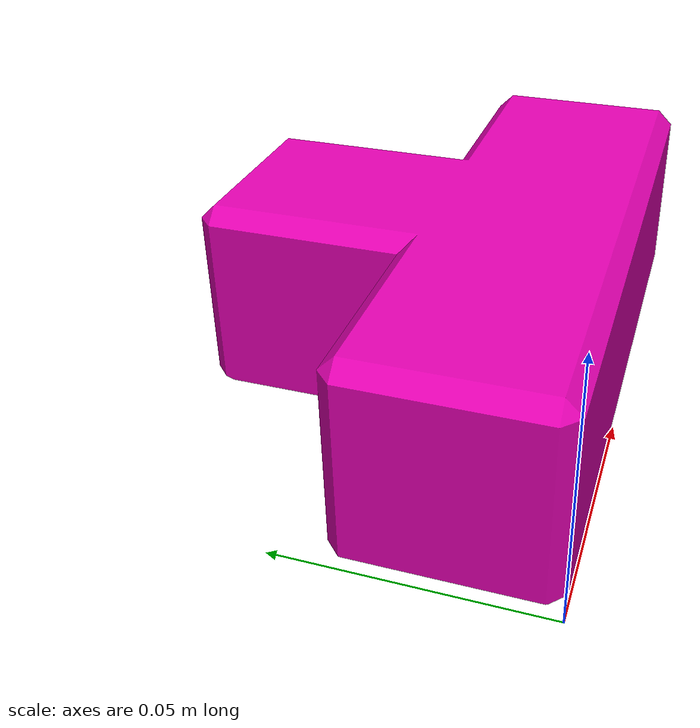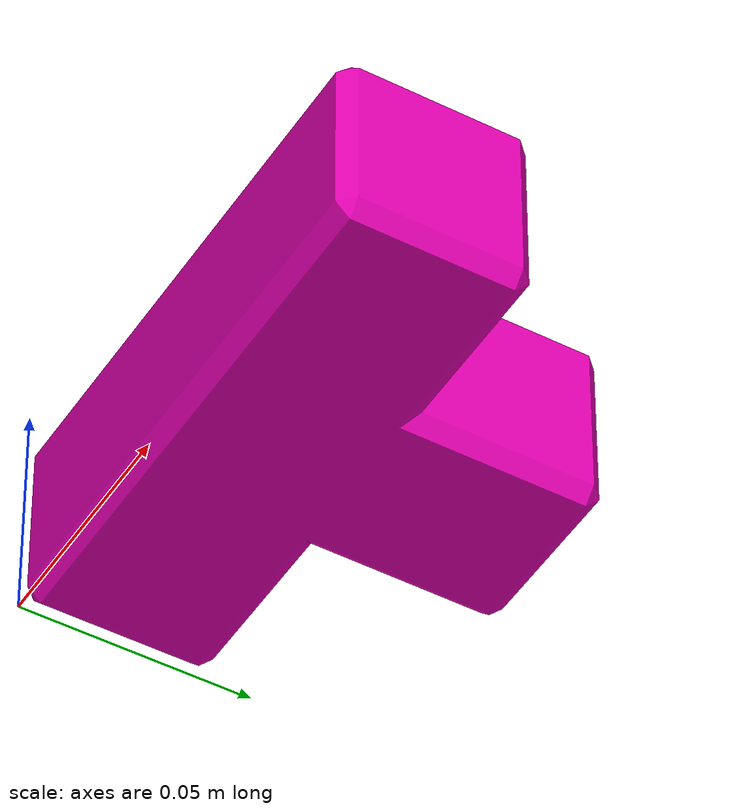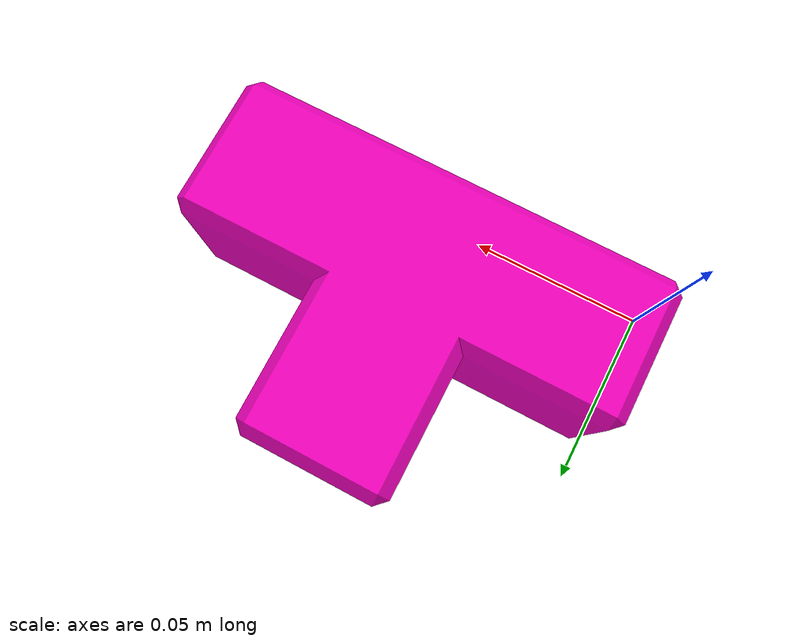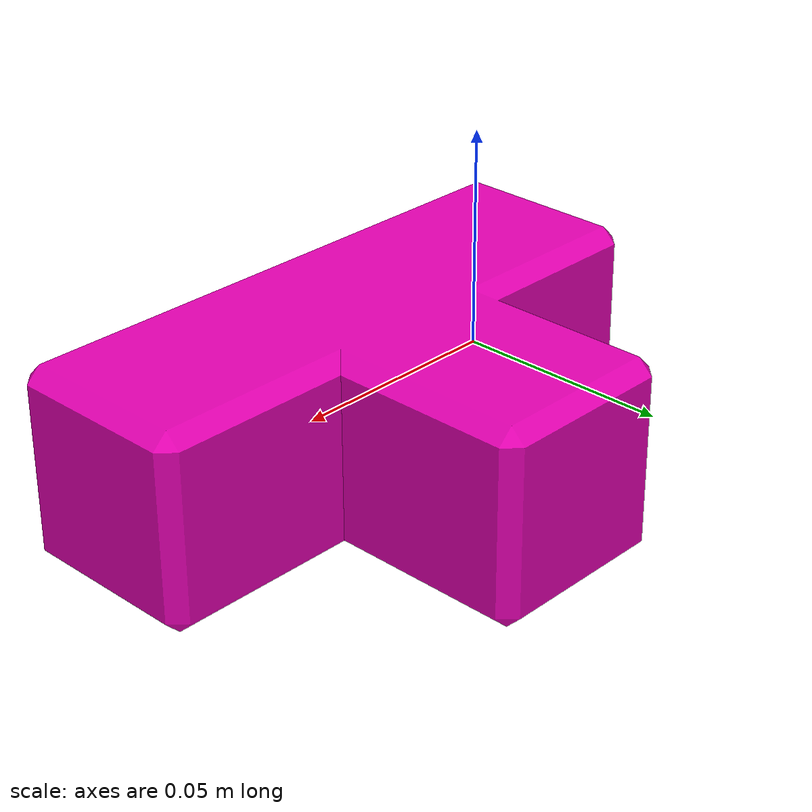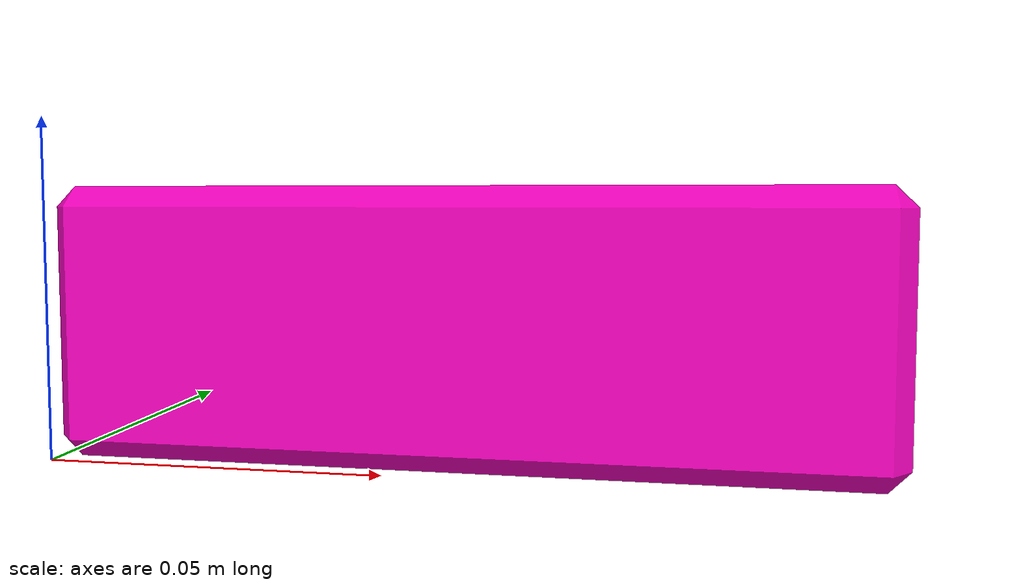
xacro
<?xml version="1.0" ?>
<robot name="Tetris_T" xmlns:xacro="http://www.ros.org/wiki/xacro">

<xacro:include filename="$(find Tetris_T_description)/urdf/materials.xacro" />

<material name="color">
  <color rgba="0.9 0.0 0.7 1.000"/>
</material>

<link name="base_link">
  <inertial>
    <origin xyz="0.06 0.02993691053677932 0.02" rpy="0 0 0"/>
    <mass value="0.26659"/>
    <inertia ixx="0.000148" iyy="0.00028" izz="0.000359" ixy="-0.0" iyz="0.0" ixz="0.0"/>
  </inertial>

  <visual>
    <origin xyz="0 0 0" rpy="0 0 0"/>
    <geometry>
      <mesh filename="package://Tetris_T_description/meshes/base_link.stl" scale="0.001 0.001 0.001"/>
    </geometry>
    <material name="color"/>
  </visual>

  <collision>
    <origin xyz=".06 .02 .02" rpy="0 0 0"/>
    <geometry>
      <box size="0.12 0.04 0.04"/> <!-- Adjust the size of the first box -->
      <origin xyz="0.0 0.0 0.02" rpy="0 0 0"/> <!-- Offset the first box by (0.05, 0.05, 0.05) -->
    </geometry>
  </collision>

  <collision>
    <origin xyz=".06 .06 .02" rpy="0 0 0"/>
    <geometry>
      <box size="0.04 0.04 0.04"/> <!-- Adjust the size of the first box -->
      <origin xyz="0.0 0.0 0.02" rpy="0 0 0"/> <!-- Offset the first box by (0.05, 0.05, 0.05) -->
    </geometry>
  </collision>
</link>

</robot>

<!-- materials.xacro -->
<robot name="Tetris_T" xmlns:xacro="http://www.ros.org/wiki/xacro" >

<material name="silver">
  <color rgba="0.700 0.700 0.700 1.000"/>
</material>

</robot>
